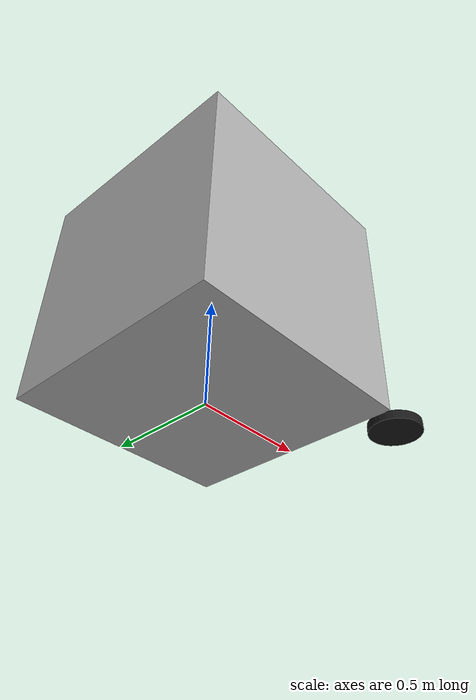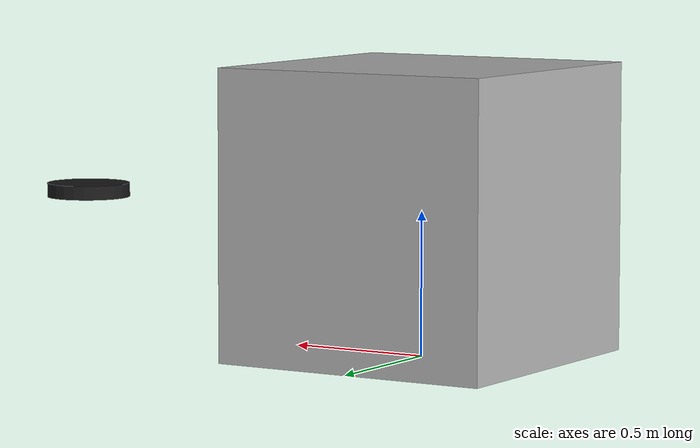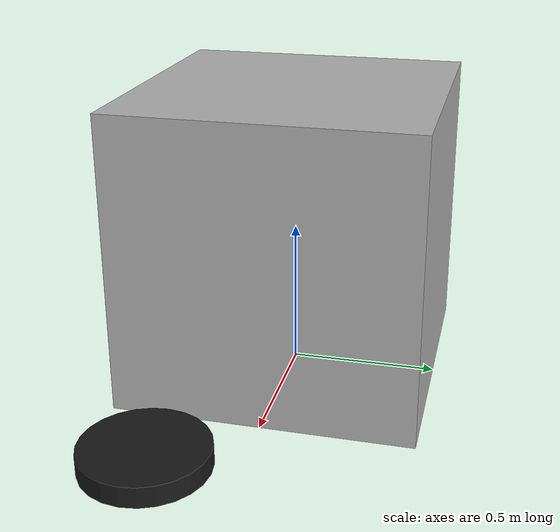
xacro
<?xml version="1.0"?>

<robot xmlns:xacro="http://www.ros.org/wiki/xacro" name="satellite">

  <!-- ================= WORLD ================= -->

  <link name="world"/>

  <!-- ================= SATELLITE BODY ================= -->

  <link name="base_link">

    <visual>
      <geometry>
        <box size="1 1 1"/>
      </geometry>

      <material name="gray">
        <color rgba="0.7 0.7 0.7 1"/>
      </material>

    </visual>

    <collision>
      <geometry>
        <box size="1 1 1"/>
      </geometry>
    </collision>

    <inertial>

      <origin xyz="0 0 0"/>

      <mass value="70"/>

      <inertia
          ixx="12"
          iyy="12"
          izz="12"
          ixy="0"
          ixz="0"
          iyz="0"/>

    </inertial>

  </link>

  <!-- ================= SATELLITE JOINT ================= -->

  <joint name="satellite_joint" type="revolute">

      <parent link="world"/>
      <child link="base_link"/>

      <origin xyz="0 0 0.5"/>

      <axis xyz="0 0 1"/>

      <limit
          lower="-3.14159"
          upper="3.14159"
          effort="100"
          velocity="5"/>

  </joint>

  <!-- ================= REACTION WHEEL ================= -->

  <link name="reaction_wheel">

      <visual>

          <origin xyz="0.7 0 0"/>

          <geometry>

              <cylinder
                  radius="0.15"
                  length="0.05"/>

          </geometry>

          <material name="black">
              <color rgba="0.1 0.1 0.1 1"/>
          </material>

      </visual>

      <collision>

    	<origin xyz="0.7 0 0"/>

   	 <geometry>
              <cylinder
                  radius="0.15"
                  length="0.05"/>
          </geometry>

      </collision>

      <inertial>

          <mass value="2"/>

          <origin xyz="0 0 0"/>

          <inertia
              ixx="0.01"
              iyy="0.01"
              izz="0.02"
              ixy="0"
              ixz="0"
              iyz="0"/>

      </inertial>

  </link>

  <!-- ================= REACTION WHEEL JOINT ================= -->

  <joint name="wheel_joint" type="continuous">

      <parent link="base_link"/>

      <child link="reaction_wheel"/>

      <origin xyz="0.7 0 0"/>

      <axis xyz="0 0 1"/>

  </joint>
  <ros2_control name="GazeboSystem" type="system">

  <hardware>
    <plugin>gazebo_ros2_control/GazeboSystem</plugin>
  </hardware>

  <joint name="satellite_joint">
    <command_interface name="position"/>
    <state_interface name="position"/>
    <state_interface name="velocity"/>
  </joint>

  <joint name="wheel_joint">
    <command_interface name="velocity"/>
    <state_interface name="position"/>
    <state_interface name="velocity"/>
  </joint>

</ros2_control>

<gazebo>
  <plugin filename="libgazebo_ros2_control.so"
          name="gazebo_ros2_control"/>
</gazebo>

<gazebo>
  <plugin filename="libgazebo_ros2_control.so"
          name="gazebo_ros2_control">

    <parameters>
      $(find satellite_description)/config/controllers.yaml
    </parameters>

  </plugin>
</gazebo>
</robot>
